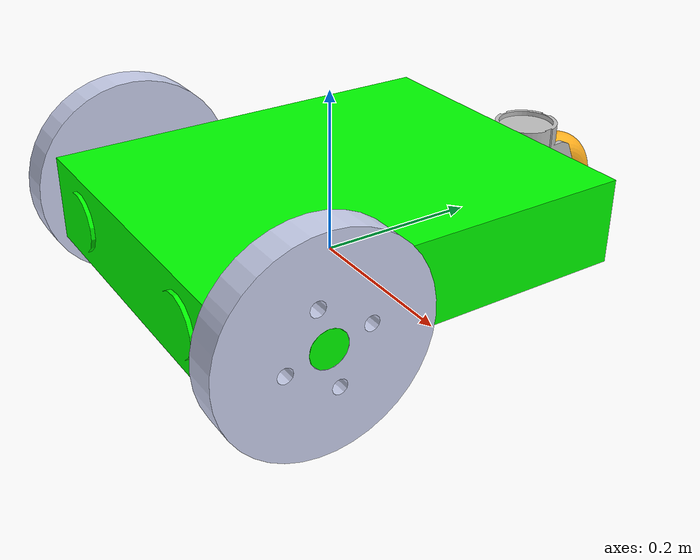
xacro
<?xml version='1.0'?>

<robot name="myrobot" xmlns:xacro="http://www.ros.org/wiki/xacro">

  <xacro:include filename="$(find mybot_description)/urdf/mybot.gazebo" />
  <xacro:include filename="$(find mybot_description)/urdf/materials.xacro" />
  <xacro:include filename="$(find mybot_description)/urdf/macros.xacro" />

  <link
    name="chassis">
    <inertial>
      <origin
        xyz="-1.40555552583811E-17 0.0529171236151679 0.00391266405428065"
        rpy="0 0 0" />
      <mass
        value="21.1825200418427" />
      <inertia
        ixx="0"
        ixy="0"
        ixz="0"
        iyy="0"
        iyz="0"
        izz="0" />
    </inertial>
    <visual>
      <origin
        xyz="0 0 0"
        rpy="0 0 0" />
      <geometry>
        <mesh
          filename="package://mybot_description/meshes/chassis.STL" />
      </geometry>
      <material
        name="">
        <color
          rgba="0 1 0 1" />
      </material>
    </visual>
    <collision>
      <origin
        xyz="0 0 0"
        rpy="0 0 0" />
      <geometry>
        <mesh
          filename="package://mybot_description/meshes/chassis.STL" />
      </geometry>
    </collision>
  </link>
  <link
    name="right_wheel">
    <inertial>
      <origin
        xyz="0 6.9389E-18 -0.02"
        rpy="0 0 0" />
      <mass
        value="1.8586" />
      <inertia
        ixx="0"
        ixy="0"
        ixz="0"
        iyy="0"
        iyz="0"
        izz="0" />
    </inertial>
    <visual>
      <origin
        xyz="0 0 0"
        rpy="0 0 0" />
      <geometry>
        <mesh
          filename="package://mybot_description/meshes/right_wheel.STL" />
      </geometry>
      <material
        name="">
        <color
          rgba="0.79216 0.81961 0.93333 1" />
      </material>
    </visual>
    <collision>
      <origin
        xyz="0 0 0"
        rpy="0 0 0" />
      <geometry>
        <mesh
          filename="package://mybot_description/meshes/right_wheel.STL" />
      </geometry>
    </collision>
  </link>
  <joint
    name="right_wheel_hinge"
    type="continuous">
    <origin
      xyz="-0.20139 -0.154 0.0525"
      rpy="1.5708 6.123E-17 1.5708" />
    <parent
      link="chassis" />
    <child
      link="right_wheel" />
    <axis
      xyz="0 0 1" />
  </joint>
  <link
    name="left_wheel">
    <inertial>
      <origin
        xyz="0 6.9389E-18 -0.02"
        rpy="0 0 0" />
      <mass
        value="1.8586" />
      <inertia
        ixx="0"
        ixy="0"
        ixz="0"
        iyy="0"
        iyz="0"
        izz="0" />
    </inertial>
    <visual>
      <origin
        xyz="0 0 0"
        rpy="0 0 0" />
      <geometry>
        <mesh
          filename="package://mybot_description/meshes/left_wheel.STL" />
      </geometry>
      <material
        name="">
        <color
          rgba="0.79216 0.81961 0.93333 1" />
      </material>
    </visual>
    <collision>
      <origin
        xyz="0 0 0"
        rpy="0 0 0" />
      <geometry>
        <mesh
          filename="package://mybot_description/meshes/left_wheel.STL" />
      </geometry>
    </collision>
  </link>
  <joint
    name="left_wheel_hinge"
    type="continuous">
    <origin
      xyz="0.20139 -0.154 0.0525"
      rpy="1.5708 -0.54129 -1.5708" />
    <parent
      link="chassis" />
    <child
      link="left_wheel" />
    <axis
      xyz="0 0 -1" />
  </joint>
  <link
    name="caster">
    <inertial>
      <origin
        xyz="-0.03316 -0.021428 0.0014432"
        rpy="0 0 0" />
      <mass
        value="2.6779" />
      <inertia
        ixx="0.0047707"
        ixy="0.0023924"
        ixz="3.8788E-05"
        iyy="0.001833"
        iyz="-9.8371E-05"
        izz="0.0056203" />
    </inertial>
    <visual>
      <origin
        xyz="0 0 0"
        rpy="0 0 0" />
      <geometry>
        <mesh
          filename="package://mybot_description/meshes/caster.STL" />
      </geometry>
      <material
        name="">
        <color
          rgba="0.75294 0.75294 0.75294 1" />
      </material>
    </visual>
    <collision>
      <origin
        xyz="0 0 0"
        rpy="0 0 0" />
      <geometry>
        <mesh
          filename="package://mybot_description/meshes/caster.STL" />
      </geometry>
    </collision>
  </link>
  <joint
    name="caster_hinge"
    type="continuous">
    <origin
      xyz="-0.00439 0.304 0"
      rpy="-1.5708 -4.7843E-17 -1.4236" />
    <parent
      link="chassis" />
    <child
      link="caster" />
    <axis
      xyz="0 -1 0" />
  </joint>
  <link
    name="caster_wheel">
    <inertial>
      <origin
        xyz="-5.4075E-05 -1.2199E-05 8.0768E-09"
        rpy="0 0 0" />
      <mass
        value="3.9193" />
      <inertia
        ixx="0"
        ixy="0"
        ixz="0"
        iyy="0"
        iyz="0"
        izz="0" />
    </inertial>
    <visual>
      <origin
        xyz="0 0 0"
        rpy="0 0 0" />
      <geometry>
        <mesh
          filename="package://mybot_description/meshes/caster_wheel.STL" />
      </geometry>
      <material
        name="">
        <color
          rgba="1 0.68627 0.11765 1" />
      </material>
    </visual>
    <collision>
      <origin
        xyz="0 0 0"
        rpy="0 0 0" />
      <geometry>
        <mesh
          filename="package://mybot_description/meshes/caster_wheel.STL" />
      </geometry>
    </collision>
  </link>
  <joint
    name="caster_wheel_hinge"
    type="continuous">
    <origin
      xyz="-0.05126 0.01175 0.002409"
      rpy="-3.1376 -0.034066 3.0259" />
    <parent
      link="caster" />
    <child
      link="caster_wheel" />
    <axis
      xyz="0 0 0" />
  </joint>
</robot>

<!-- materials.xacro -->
<robot>

<material name="black">
  <color rgba="0.0 0.0 0.0 1.0"/>
</material>

<material name="blue">
  <color rgba="0.0 0.0 0.8 1.0"/>
</material>

<material name="green">
  <color rgba="0.0 0.8 0.0 1.0"/>
</material>

<material name="grey">
  <color rgba="0.2 0.2 0.2 1.0"/>
</material>

<material name="orange">
  <color rgba="${255/255} ${108/255} ${10/255} 1.0"/>
</material>

<material name="brown">
  <color rgba="${222/255} ${207/255} ${195/255} 1.0"/>
</material>

<material name="red">
  <color rgba="0.8 0.0 0.0 1.0"/>
</material>

<material name="white">
  <color rgba="1.0 1.0 1.0 1.0"/>
</material>
</robot>
